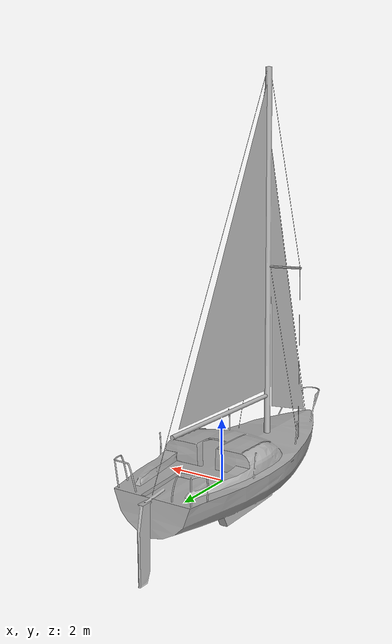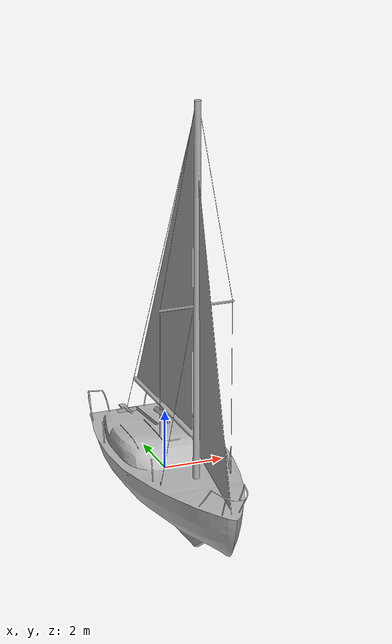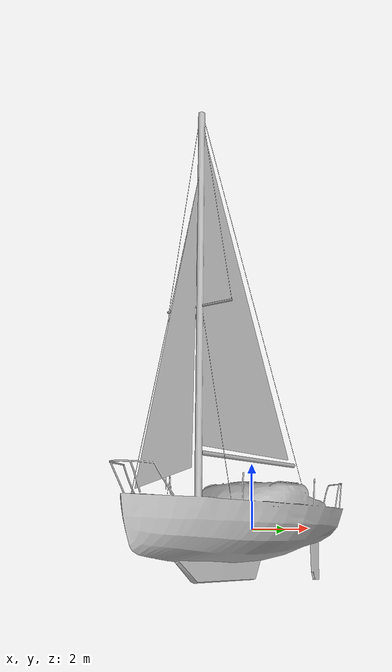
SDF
<?xml version="1.0" ?>
<sdf version="1.5">
  <model name="boat1">
    <static>true</static>
    <link name="link">
      <collision name="boat1_collision">
        <pose>0 0 0.1 0 0 0</pose>
        <geometry>
          <mesh>
	     <uri>model://boat1/meshes/boat1.stl</uri>
	     <scale> 2 2 2</scale>
          </mesh>
        </geometry>
      </collision>

      <visual name="boat1_visual">
        <cast_shadows>false</cast_shadows>
        <pose>0 0 0.1 0 0 0</pose>
        <geometry>
          <mesh>
	     <uri>model://boat1/meshes/boat1.dae</uri>
	     <scale> 2 2 2</scale>
          </mesh>
        </geometry>

      </visual>
    </link>
  </model>
</sdf>
